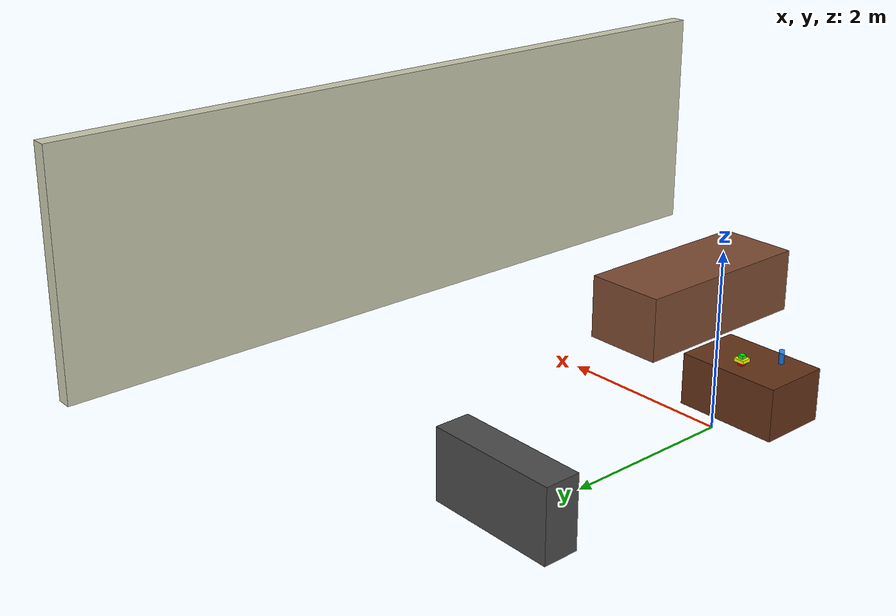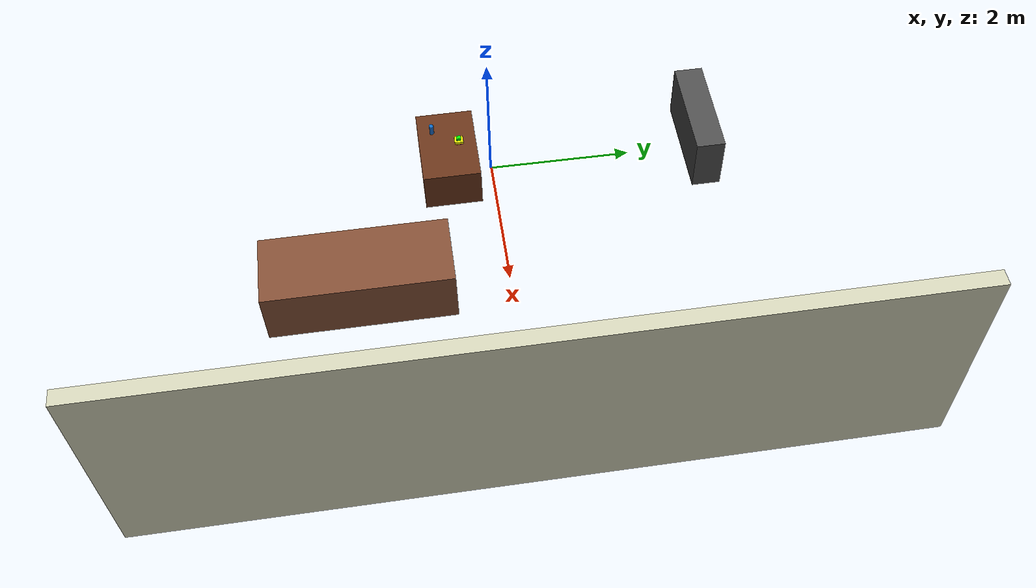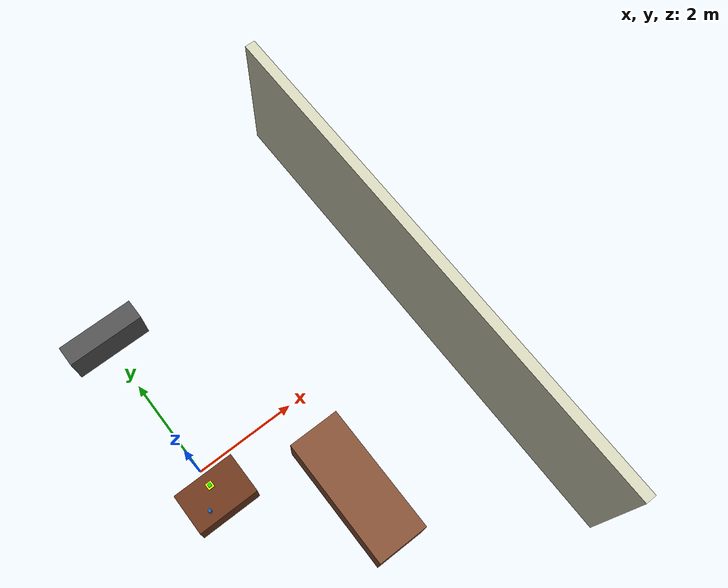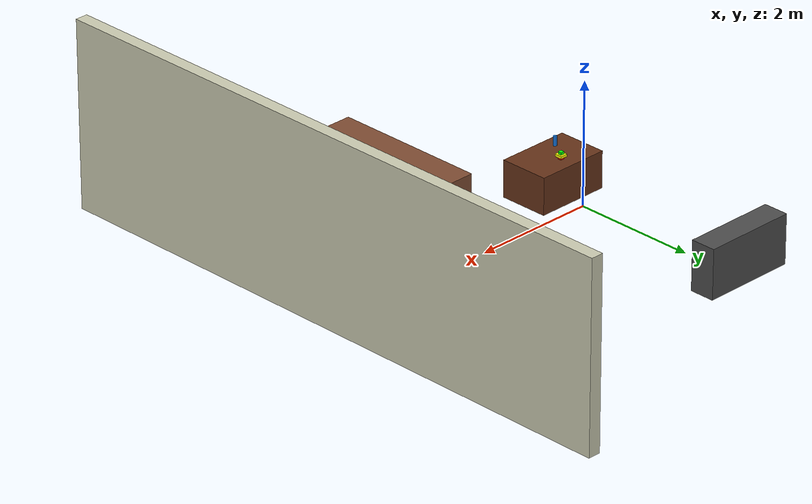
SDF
<sdf version="1.10">
 <world name="working_living_room">
  <physics name="1ms" type="ignored">
   <max_step_size>0.001</max_step_size>
   <real_time_factor>1</real_time_factor>
   <real_time_update_rate>1000</real_time_update_rate>
  </physics>
  <plugin name="gz::sim::systems::Physics" filename="libgz-sim-physics-system.so"/>
  <plugin name="gz::sim::systems::UserCommands" filename="libgz-sim-user-commands-system.so"/>
  <plugin name="gz::sim::systems::SceneBroadcaster" filename="libgz-sim-scene-broadcaster-system.so"/>
  <gravity>0 0 -9.8000000000000007</gravity>
  <magnetic_field>5.5644999999999998e-06 2.2875799999999999e-05 -4.2388400000000002e-05</magnetic_field>
  <atmosphere type="adiabatic"/>
  <scene>
   <ambient>0.400000006 0.400000006 0.400000006 1</ambient>
   <background>0.699999988 0.699999988 0.699999988 1</background>
   <shadows>true</shadows>
  </scene>
  <model name="wall_1">
   <static>true</static>
   <pose>5 0 1.5 0 0 0</pose>
   <link name="wall_link">
    <collision name="wall_collision">
     <geometry><box><size>0.20000000000000001 10 3</size></box></geometry>
    </collision>
    <visual name="wall_visual">
     <geometry><box><size>0.20000000000000001 10 3</size></box></geometry>
     <material>
      <ambient>0.800000012 0.800000012 0.699999988 1</ambient>
      <diffuse>0.800000012 0.800000012 0.699999988 1</diffuse>
     </material>
    </visual>
    <inertial>
     <mass>1</mass>
     <inertia><ixx>1</ixx><ixy>0</ixy><ixz>0</ixz><iyy>1</iyy><iyz>0</iyz><izz>1</izz></inertia>
    </inertial>
   </link>
  </model>
  <model name="sofa">
   <static>true</static>
   <pose>2 -2 0.40000000596046448 0 0 1.5699999681373873</pose>
   <link name="sofa_link">
    <collision name="sofa_collision">
     <geometry><box><size>2.5 1 0.80000000000000004</size></box></geometry>
    </collision>
    <visual name="sofa_visual">
     <geometry><box><size>2.5 1 0.80000000000000004</size></box></geometry>
     <material>
      <ambient>0.5 0.300000012 0.200000003 1</ambient>
      <diffuse>0.5 0.300000012 0.200000003 1</diffuse>
     </material>
    </visual>
    <inertial>
     <mass>1</mass>
     <inertia><ixx>1</ixx><ixy>0</ixy><ixz>0</ixz><iyy>1</iyy><iyz>0</iyz><izz>1</izz></inertia>
    </inertial>
   </link>
  </model>
  <model name="coffee_table">
   <static>true</static>
   <pose>0 -0.60000002384185791 0.30000001192092896 0 0 0</pose>
   <link name="table_link">
    <collision name="table_collision">
     <geometry><box><size>1.2 0.80000000000000004 0.59999999999999998</size></box></geometry>
    </collision>
    <visual name="table_visual">
     <geometry><box><size>1.2 0.80000000000000004 0.59999999999999998</size></box></geometry>
     <material>
      <ambient>0.400000006 0.200000003 0.100000001 1</ambient>
      <diffuse>0.400000006 0.200000003 0.100000001 1</diffuse>
     </material>
    </visual>
    <inertial>
     <mass>1</mass>
     <inertia><ixx>1</ixx><ixy>0</ixy><ixz>0</ixz><iyy>1</iyy><iyz>0</iyz><izz>1</izz></inertia>
    </inertial>
   </link>
  </model>
  <model name="tv_stand">
   <static>true</static>
   <pose>0 3 0.40000000596046448 0 0 0</pose>
   <link name="stand_link">
    <collision name="stand_collision">
     <geometry><box><size>1.5 0.40000000000000002 0.80000000000000004</size></box></geometry>
    </collision>
    <visual name="stand_visual">
     <geometry><box><size>1.5 0.40000000000000002 0.80000000000000004</size></box></geometry>
     <material>
      <ambient>0.300000012 0.300000012 0.300000012 1</ambient>
      <diffuse>0.300000012 0.300000012 0.300000012 1</diffuse>
     </material>
    </visual>
    <inertial>
     <mass>1</mass>
     <inertia><ixx>1</ixx><ixy>0</ixy><ixz>0</ixz><iyy>1</iyy><iyz>0</iyz><izz>1</izz></inertia>
    </inertial>
   </link>
  </model>
  <model name="bottle">
   <pose>-0.24406284093856812 -0.79859298467636108 0.67499995231628418 -7.4922152700844379e-06 -1.8374997525680984e-05 -0.00050601905386976783</pose>
   <link name="bottle_link">
    <inertial>
     <mass>0.20000000000000001</mass>
     <inertia>
      <ixx>0.001</ixx>
      <ixy>0</ixy>
      <ixz>0</ixz>
      <iyy>0.001</iyy>
      <iyz>0</iyz>
      <izz>0.00050000000000000001</izz>
     </inertia>
    </inertial>
    <collision name="bottle_collision">
     <geometry>
      <cylinder><radius>0.029999999999999999</radius><length>0.14999999999999999</length></cylinder>
     </geometry>
    </collision>
    <visual name="bottle_visual">
     <geometry>
      <cylinder><radius>0.029999999999999999</radius><length>0.14999999999999999</length></cylinder>
     </geometry>
     <material><ambient>0 0.5 1 0.800000012</ambient><diffuse>0 0.5 1 0.800000012</diffuse></material>
    </visual>
   </link>
   <static>false</static>
  </model>
  <model name="box">
   <pose>0.001172203104943037 -0.44133934378623962 0.62999999523162842 4.7008211622015155e-08 -7.5975693598395825e-08 -0.001585110517991237</pose>
   <link name="box_link">
    <inertial>
     <mass>0.10000000000000001</mass>
     <inertia>
      <ixx>0.00020000000000000001</ixx>
      <ixy>0</ixy>
      <ixz>0</ixz>
      <iyy>0.00020000000000000001</iyy>
      <iyz>0</iyz>
      <izz>0.00020000000000000001</izz>
     </inertia>
    </inertial>
    <collision name="box_collision">
     <geometry><box><size>0.059999999999999998 0.059999999999999998 0.059999999999999998</size></box></geometry>
    </collision>
    <visual name="box_visual">
     <geometry><box><size>0.059999999999999998 0.059999999999999998 0.059999999999999998</size></box></geometry>
     <material><ambient>1 0 0 1</ambient><diffuse>1 0 0 1</diffuse></material>
    </visual>
   </link>
   <static>false</static>
  </model>
  <model name="box_top">
   <pose>0.001172203104943037 -0.44133934378623962 0.68999999523162842 0 0 0</pose>
   <link name="box_top_link">
    <inertial>
     <mass>0.1</mass>
     <inertia><ixx>0.0002</ixx><ixy>0</ixy><ixz>0</ixz><iyy>0.0002</iyy><iyz>0</iyz><izz>0.0002</izz></inertia>
    </inertial>
    <collision name="box_top_collision"><geometry><box><size>0.06 0.06 0.06</size></box></geometry></collision>
    <visual name="box_top_visual">
     <geometry><box><size>0.06 0.06 0.06</size></box></geometry>
     <material><ambient>0 1 0 1</ambient><diffuse>0 1 0 1</diffuse></material>
    </visual>
   </link>
   <static>false</static>
  </model>
  <model name="box_middle">
   <pose>0.001172203104943037 -0.44133934378623962 0.65999999523162842 0 0 0</pose>
   <link name="box_middle_link">
    <inertial>
     <mass>0.05</mass>
     <inertia><ixx>0.0001</ixx><ixy>0</ixy><ixz>0</ixz><iyy>0.0001</iyy><iyz>0</iyz><izz>0.0001</izz></inertia>
    </inertial>
    <collision name="box_middle_collision"><geometry><box><size>0.12 0.12 0.04</size></box></geometry></collision>
    <visual name="box_middle_visual">
     <geometry><box><size>0.12 0.12 0.04</size></box></geometry>
     <material><ambient>1 1 0 1</ambient><diffuse>1 1 0 1</diffuse></material>
    </visual>
   </link>
   <static>false</static>
  </model>
  <model name="left_camera">
   <static>true</static>
   <pose>-0.4 0 1.5 0 0.8 -1.57</pose>
   <link name="camera_link">
    <sensor name="camera_sensor" type="camera">
     <topic>__default__</topic>
     <update_rate>30</update_rate>
     <enable_metrics>false</enable_metrics>
     <camera name="__default__">
      <horizontal_fov>1.5</horizontal_fov>
      <image><width>640</width><height>480</height><format>RGB_INT8</format><anti_aliasing>4</anti_aliasing></image>
      <camera_info_topic>__default__</camera_info_topic>
      <triggered>false</triggered>
      <clip><near>0.10000000000000001</near><far>10</far></clip>
      <save enabled="false"><path>__default__</path></save>
      <visibility_mask>4294967295</visibility_mask>
      <noise><type>none</type><mean>0</mean><stddev>0</stddev></noise>
      <distortion><k1>0</k1><k2>0</k2><k3>0</k3><p1>0</p1><p2>0</p2><center>0.5 0.5</center></distortion>
      <lens>
       <type>stereographic</type>
       <scale_to_hfov>true</scale_to_hfov>
       <cutoff_angle>1.5707963267948966</cutoff_angle>
       <env_texture_size>256</env_texture_size>
      </lens>
     </camera>
    </sensor>
    <inertial>
     <mass>1</mass>
     <inertia><ixx>1</ixx><ixy>0</ixy><ixz>0</ixz><iyy>1</iyy><iyz>0</iyz><izz>1</izz></inertia>
    </inertial>
   </link>
  </model>
  <model name="right_camera">
   <static>true</static>
   <pose>-0.69999998807907104 -1 0.89999997615814209 -3.4106290974021139e-09 0.30000000484648648 0.70000000918247207</pose>
   <link name="camera_link">
    <sensor name="camera_sensor" type="camera">
     <topic>__default__</topic>
     <update_rate>30</update_rate>
     <enable_metrics>false</enable_metrics>
     <camera name="__default__">
      <horizontal_fov>1.3999999999999999</horizontal_fov>
      <image><width>640</width><height>480</height><format>RGB_INT8</format><anti_aliasing>4</anti_aliasing></image>
      <camera_info_topic>__default__</camera_info_topic>
      <triggered>false</triggered>
      <clip><near>0.10000000000000001</near><far>10</far></clip>
      <save enabled="false"><path>__default__</path></save>
      <visibility_mask>4294967295</visibility_mask>
      <noise><type>none</type><mean>0</mean><stddev>0</stddev></noise>
      <distortion><k1>0</k1><k2>0</k2><k3>0</k3><p1>0</p1><p2>0</p2><center>0.5 0.5</center></distortion>
      <lens>
       <type>stereographic</type>
       <scale_to_hfov>true</scale_to_hfov>
       <cutoff_angle>1.5707963267948966</cutoff_angle>
       <env_texture_size>256</env_texture_size>
      </lens>
     </camera>
    </sensor>
    <inertial>
     <mass>1</mass>
     <inertia><ixx>1</ixx><ixy>0</ixy><ixz>0</ixz><iyy>1</iyy><iyz>0</iyz><izz>1</izz></inertia>
    </inertial>
   </link>
  </model>
  <light name="sun" type="directional">
   <pose>0 0 10 0 0 0</pose>
   <intensity>1</intensity>
   <direction>-0.5 0.10000000000000001 -0.90000000000000002</direction>
   <diffuse>0.800000012 0.800000012 0.800000012 1</diffuse>
   <specular>0.200000003 0.200000003 0.200000003 1</specular>
   <attenuation><range>10</range><linear>1</linear><constant>1</constant><quadratic>0</quadratic></attenuation>
   <spot><inner_angle>0</inner_angle><outer_angle>0</outer_angle><falloff>0</falloff></spot>
  </light>
 </world>
</sdf>
